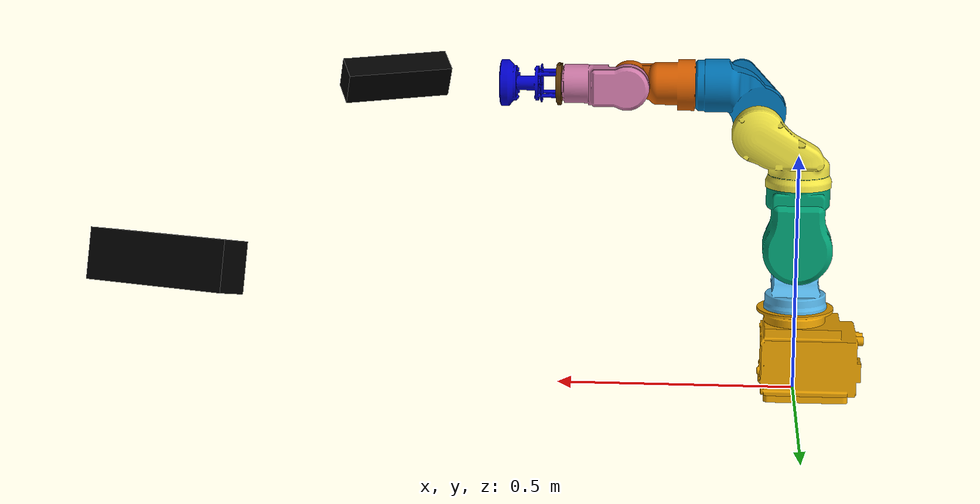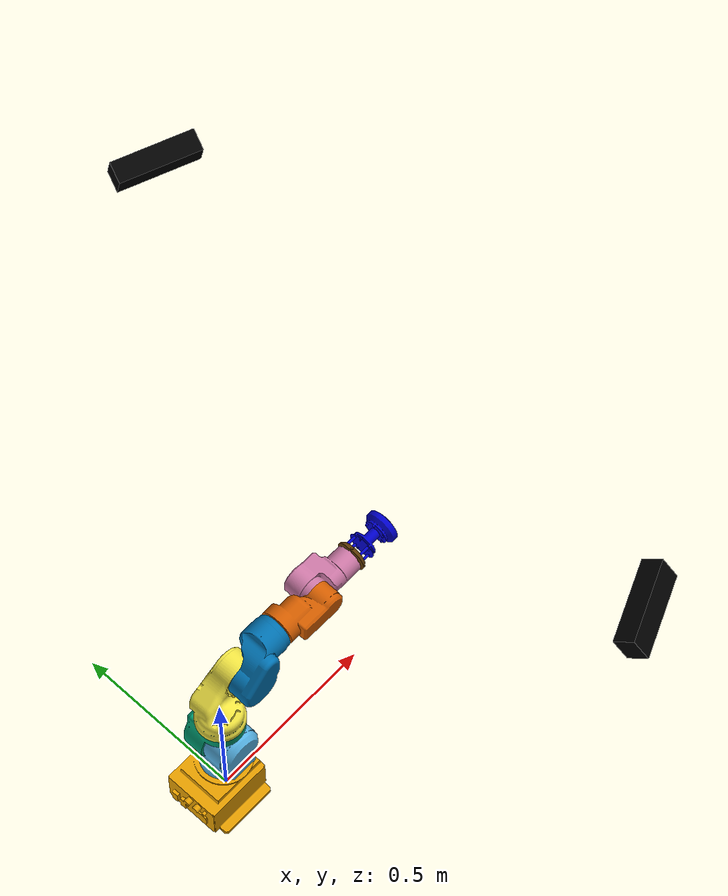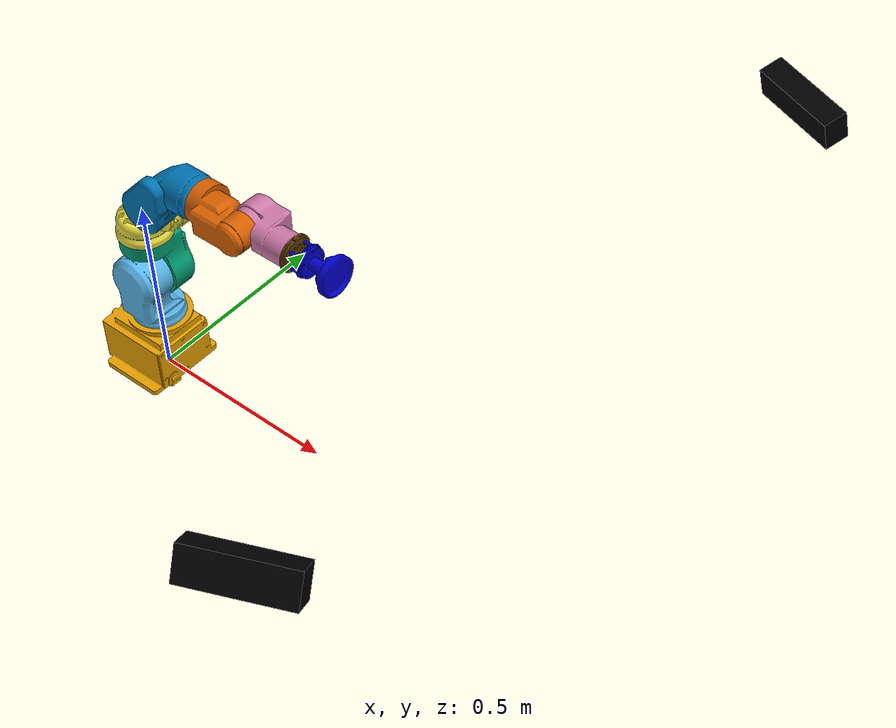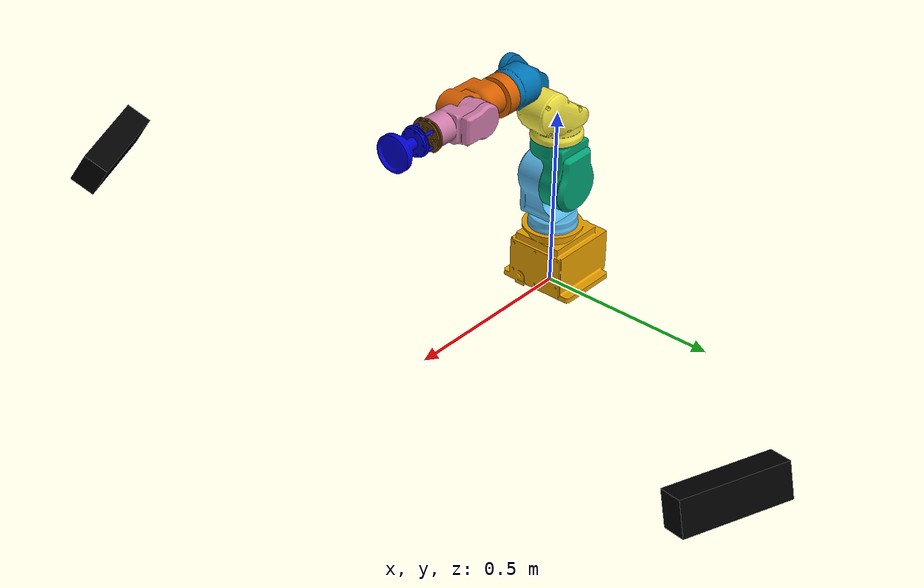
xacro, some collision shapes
<?xml version="1.0"?>
<robot name="sia5" xmlns:xacro="http://ros.org/wiki/xacro">
  <!-- File Include -->
  <xacro:include filename="$(find motoman_description)/urdf/sensor/kinect.urdf.xacro"/>
  <xacro:include filename="$(find motoman_description)/urdf/sensor/kinect.gazebo.xacro"/>
  <xacro:include filename="$(find motoman_description)/robots/sia5/sia5_with_jamming.urdf.xacro"/>

  <!-- add Kinect V2 -->
  <!-- Kinect_first -->
  <!-- Link -->
  <xacro:kinect2_link_box_v0 name="kinect_first_link"/>
  <link name="kinect_first_rgb_optical_frame"/>

  <!-- Joint -->
  <joint name="joint_kinect_first" type="fixed">
    <origin xyz="0.9394 -0.6455 0.5172" rpy="0.0257 0.5551 2.0027" />
    <parent link="base_link"/>
    <child link="kinect_first_link"/>
  </joint>

  <joint name="joint_rgb_kinect_first" type="fixed">
    <origin rpy="${M_PI/2} ${M_PI} ${M_PI/2}"/>
    <parent link="kinect_first_link"/>
    <child link="kinect_first_rgb_optical_frame"/>
  </joint>

  <!-- Gazebo -->
  <xacro:kinect_gazebo name="kinect_first"/>

  <!-- Kinect_second -->
  <!-- Link -->
  <xacro:kinect2_link_box_v0 name="kinect_second_link"/>
  <link name="kinect_second_rgb_optical_frame"/>

  <!-- Joint -->
  <joint name="joint_kinect_second" type="fixed">
    <origin xyz="1.0281 1.2353 0.5207" rpy="-0.0202 0.2594 -1.943" />
    <parent link="base_link"/>
    <child link="kinect_second_link"/>
  </joint>

  <joint name="joint_rgb_kinect_second" type="fixed">
    <origin rpy="${M_PI/2} ${M_PI} ${M_PI/2}"/>
    <parent link="kinect_second_link"/>
    <child link="kinect_second_rgb_optical_frame"/>
  </joint>

  <!-- Gazebo -->
  <xacro:kinect_gazebo name="kinect_second"/>

</robot>

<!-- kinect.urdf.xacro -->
<robot xmlns:xacro="http://ros.org/wiki/xacro">

<xacro:macro name="kinect2_link_box_v0" params="name">
    <link name="${name}">
      <visual>
		<material name="black"/>
        <geometry>
          <mesh filename="package://motoman_description/meshes/sensor/visual/COLLADA/kinectv2.stl"/>
        </geometry>
      </visual>
      <collision>
		<origin xyz="0 0 0.041"/>
        <geometry>
		  <box size="0.065 0.25 0.082"/>
        </geometry>
      </collision>
      <inertial>
        <mass value="0.935"/>
        <inertia ixx="0.0053937" ixy="0" ixz="0"
				 iyy="0.00085311" iyz="0"
				 izz="0.00519899" />
      </inertial>
    </link>
</xacro:macro>
</robot>

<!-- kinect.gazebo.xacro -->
<robot xmlns:xacro="http://ros.org/wiki/xacro">

  <xacro:include filename="$(find motoman_description)/urdf/common.xacro" />

  <xacro:macro name="kinect_gazebo" params="name">
    <gazebo reference="${name}_link">
      <mu1>0.2</mu1>
      <mu2>0.2</mu2>
      <material>Gazebo/Black</material>
      <!-- hd -->
      <sensor type="depth" name="${name}">
        <always_on>true</always_on>
        <update_rate>30.0</update_rate>
        <camera>
          <horizontal_fov>${84.1*M_PI/180.0}</horizontal_fov>
          <image>
            <format>B8G8R8</format>
            <width>512</width>
            <height>424</height>
          </image>
          <clip>
            <near>0.05</near>
            <far>4.5</far>
          </clip>
          <noise>
            <type>gaussian</type>
            <mean>0.0</mean>
            <stddev>0.005</stddev>
          </noise>
        </camera>
        <plugin name="${name}_camera_controller" filename="libgazebo_ros_openni_kinect.so">
          <cameraName>${name}/hd</cameraName>
          <alwaysOn>true</alwaysOn>
          <updateRate>30</updateRate>
          <imageTopicName>image_color</imageTopicName>
          <depthImageTopicName>image_depth</depthImageTopicName>
          <pointCloudTopicName>points</pointCloudTopicName>
          <cameraInfoTopicName>camera_info</cameraInfoTopicName>
          <depthImageCameraInfoTopicName>camera_info</depthImageCameraInfoTopicName>
          <frameName>${name}_rgb_optical_frame</frameName>
          <baseline>0.1</baseline>
          <distortion_k1>0.0</distortion_k1>
          <distortion_k2>0.0</distortion_k2>
          <distortion_k3>0.0</distortion_k3>
          <distortion_t1>0.0</distortion_t1>
          <distortion_t2>0.0</distortion_t2>
          <pointCloudCutoff>0.05</pointCloudCutoff>
          <pointCloudCutoffMax>4.5</pointCloudCutoffMax>
        </plugin>
      </sensor>

      <!-- qhd -->
      <sensor type="depth" name="${name}">
        <always_on>true</always_on>
        <update_rate>30.0</update_rate>
        <camera>
          <horizontal_fov>${84.1*M_PI/180.0}</horizontal_fov>
          <image>
            <format>B8G8R8</format>
            <width>512</width>
            <height>424</height>
          </image>
          <clip>
            <near>0.05</near>
            <far>4.5</far>
          </clip>
          <noise>
            <type>gaussian</type>
            <mean>0.0</mean>
            <stddev>0.005</stddev>
          </noise>
        </camera>
        <plugin name="${name}_camera_controller" filename="libgazebo_ros_openni_kinect.so">
          <cameraName>${name}/qhd</cameraName>
          <alwaysOn>true</alwaysOn>
          <updateRate>30</updateRate>
          <imageTopicName>image_color</imageTopicName>
          <depthImageTopicName>image_depth</depthImageTopicName>
          <pointCloudTopicName>points</pointCloudTopicName>
          <cameraInfoTopicName>camera_info</cameraInfoTopicName>
          <depthImageCameraInfoTopicName>camera_info</depthImageCameraInfoTopicName>
          <frameName>${name}_rgb_optical_frame</frameName>
          <baseline>0.1</baseline>
          <distortion_k1>0.0</distortion_k1>
          <distortion_k2>0.0</distortion_k2>
          <distortion_k3>0.0</distortion_k3>
          <distortion_t1>0.0</distortion_t1>
          <distortion_t2>0.0</distortion_t2>
          <pointCloudCutoff>0.05</pointCloudCutoff>
          <pointCloudCutoffMax>4.5</pointCloudCutoffMax>
        </plugin>
      </sensor>

      <!-- sd -->
      <sensor type="depth" name="${name}">
        <always_on>true</always_on>
        <update_rate>30.0</update_rate>
        <camera>
          <horizontal_fov>${84.1*M_PI/180.0}</horizontal_fov>
          <image>
            <format>B8G8R8</format>
            <width>512</width>
            <height>424</height>
          </image>
          <clip>
            <near>0.05</near>
            <far>4.5</far>
          </clip>
          <noise>
            <type>gaussian</type>
            <mean>0.0</mean>
            <stddev>0.005</stddev>
          </noise>
        </camera>
        <plugin name="${name}_camera_controller" filename="libgazebo_ros_openni_kinect.so">
          <cameraName>${name}/sd</cameraName>
          <alwaysOn>true</alwaysOn>
          <updateRate>30</updateRate>
          <imageTopicName>image_color</imageTopicName>
          <depthImageTopicName>image_depth</depthImageTopicName>
          <pointCloudTopicName>points</pointCloudTopicName>
          <cameraInfoTopicName>camera_info</cameraInfoTopicName>
          <depthImageCameraInfoTopicName>camera_info</depthImageCameraInfoTopicName>
          <frameName>${name}_rgb_optical_frame</frameName>
          <baseline>0.1</baseline>
          <distortion_k1>0.0</distortion_k1>
          <distortion_k2>0.0</distortion_k2>
          <distortion_k3>0.0</distortion_k3>
          <distortion_t1>0.0</distortion_t1>
          <distortion_t2>0.0</distortion_t2>
          <pointCloudCutoff>0.05</pointCloudCutoff>
          <pointCloudCutoffMax>4.5</pointCloudCutoffMax>
        </plugin>
      </sensor>
    </gazebo>
  </xacro:macro>
</robot>

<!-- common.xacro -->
<robot xmlns:xacro="http://ros.org/wiki/xacro">
    <xacro:property name="M_PI" value="3.14159274" />
</robot>

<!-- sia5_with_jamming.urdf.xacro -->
<robot name="sia5" xmlns:xacro="http://ros.org/wiki/xacro">
  <!-- File Include -->
  <xacro:include filename="$(find motoman_description)/urdf/tool/jamming.urdf.xacro"/>
  <xacro:include filename="$(find motoman_description)/urdf/tool/jamming.gazebo.xacro"/>
  <xacro:include filename="$(find motoman_description)/robots/sia5/sia5.urdf.xacro"/>

  <!-- Link -->
  <xacro:tool_link_cylinder_v0 name="gripper_link" mass="1.0"
                               radius="0.0965" height="0.61445"
                               ox="0" oy="0" oz="0"
                               oroll="0" opitch="0" oyaw="0"/>

  <link name="balloon"/>
  <!-- 								   ixx="0.001" ixy="0" ixz="0" -->

  <!-- Joint  -->
  <joint name="joint_gripper" type="fixed">
    <origin rpy="-0.1745 0 0" xyz="0.0001 0 0"/>
    <parent link="tool0"/>
    <child link="gripper_link"/>
  </joint>

  <joint name="joint_balloon" type="fixed">
    <origin rpy="0.1745 0 0" xyz="0.108 0 0"/>
    <parent link="gripper_link"/>
    <child link="balloon"/>
  </joint>

  <!-- Gazebo -->
  <xacro:gazebo_tool_link_v0 name="gripper_link" color="Blue"/>
  <xacro:gazebo_tool_link_v0 name="balloon" color="Red"/>

</robot>

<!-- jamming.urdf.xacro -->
<robot xmlns:xacro="http://ros.org/wiki/xacro">
  <xacro:macro name="tool_link_v0" params="name mass
                                           ixx ixy ixz
                                           iyy iyz izz">
    <link name="${name}">
      <visual>
        <material name="blue"/>
        <geometry>
          <mesh filename="package://motoman_description/meshes/tool/visual/COLLADA/${name}.stl"/>
        </geometry>
      </visual>
      <collision>
        <geometry>
          <mesh filename="package://motoman_description/meshes/tool/collision/STL/${name}.stl"/>
        </geometry>
      </collision>
      <inertial>
        <mass value="${mass}"/>
        <inertia ixx="${ixx}" ixy="${ixy}" ixz="${ixz}" iyy="${iyy}" iyz="${iyz}" izz="${izz}" />
      </inertial>
    </link>
  </xacro:macro>

  <xacro:macro name="tool_link_no_collision_v0" params="name mass
                                                        ixx ixy ixz
                                                        iyy iyz izz">
    <link name="${name}">
      <visual>
		<material name="red"/>
        <geometry>
          <mesh filename="package://motoman_description/meshes/tool/visual/COLLADA/${name}.stl"/>
        </geometry>
      </visual>
      <inertial>
        <mass value="${mass}"/>
        <inertia ixx="${ixx}" ixy="${ixy}" ixz="${ixz}" iyy="${iyy}" iyz="${iyz}" izz="${izz}" />
      </inertial>
    </link>
  </xacro:macro>

  <xacro:macro name="tool_link_cylinder_v0" params="name mass radius height
                                                    ox oy oz oroll opitch oyaw">
    <link name="${name}">
      <visual>
        <material name="blue"/>
        <geometry>
          <mesh filename="package://motoman_description/meshes/tool/visual/COLLADA/${name}.stl"/>
        </geometry>
      </visual>
      <collision>
        <geometry>
          <mesh filename="package://motoman_description/meshes/tool/collision/STL/${name}.stl"/>
        </geometry>
      </collision>
      <inertial>
        <origin xyz="${ox} ${oy} ${oz}" rpy="${oroll} ${opitch} ${oyaw}"/>
        <mass value="${mass}"/>
        <inertia ixx="${mass*((radius*radius)/4+(height*height)/12)}" ixy="0" ixz="0"
                 iyy="${mass*((radius*radius)/4+(height*height)/12)}" iyz="0"
                 izz="${(mass*radius*radius)/2}" />
      </inertial>
    </link>
  </xacro:macro>

</robot>

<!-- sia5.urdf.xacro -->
<robot name="motoman_sia5" xmlns:xacro="http://ros.org/wiki/xacro">
  <!-- File Include -->
  <xacro:include filename="$(find motoman_description)/robots/sia5/sia5_basic.urdf.xacro" />

  <xacro:add_world>
    <origin xyz="0 0 0" rpy="0 0 0"/>
  </xacro:add_world>

</robot>

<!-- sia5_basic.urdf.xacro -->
<robot name="sia5" xmlns:xacro="http://ros.org/wiki/xacro">
  <!-- File Include -->
  <xacro:include filename="$(find motoman_description)/urdf/common.xacro" />
  <xacro:include filename="$(find motoman_description)/urdf/materials.xacro"/>
  <xacro:include filename="$(find motoman_description)/urdf/sia5/body.urdf.xacro" />
  <xacro:include filename="$(find motoman_description)/urdf/sia5/body.transmission.xacro"/>
  <xacro:include filename="$(find motoman_description)/urdf/sia5/body.gazebo.xacro"/>

  <!-- Mass -->
  <xacro:property name="sum_mass" value="30.0" />
  <!-- about mass rate -->
  <xacro:property name="table_mass" value="40.0" />
  <xacro:property name="base_rate" value="8.5" />
  <xacro:property name="s_rate" value="7.7" />
  <xacro:property name="l_rate" value="7.0" />
  <xacro:property name="e_rate" value="1.2" />
  <xacro:property name="u_rate" value="1.0" />
  <xacro:property name="r_rate" value="0.9" />
  <xacro:property name="b_rate" value="0.8" />
  <xacro:property name="t_rate" value="0.5" />
  <!-- Hard ware limits -->
  <!-- Range limits -->
  <xacro:property name="s_axis_upper_limit" value="${179.99999*M_PI/180.0*0.95}"/>
  <xacro:property name="s_axis_lower_limit" value="-${s_axis_upper_limit}"/>
  <xacro:property name="l_axis_upper_limit" value="${110.0*M_PI/180.0*0.95}"/>
  <xacro:property name="l_axis_lower_limit" value="-${l_axis_upper_limit}"/>
  <xacro:property name="e_axis_upper_limit" value="${170.0*M_PI/180.0*0.95}"/>
  <xacro:property name="e_axis_lower_limit" value="-${e_axis_upper_limit}"/>
  <xacro:property name="u_axis_upper_limit" value="${115.0*M_PI/180.0*0.95}"/>
  <xacro:property name="u_axis_lower_limit" value="${-90.0*M_PI/180.0*0.95}"/>
  <xacro:property name="r_axis_upper_limit" value="${179.99999*M_PI/180.0*0.95}"/>
  <xacro:property name="r_axis_lower_limit" value="-${r_axis_upper_limit}"/>
  <xacro:property name="b_axis_upper_limit" value="${110.0*M_PI/180.0*0.95}"/>
  <xacro:property name="b_axis_lower_limit" value="-${b_axis_upper_limit}"/>
  <xacro:property name="t_axis_upper_limit" value="${179.99999*M_PI/180.0*0.95}"/>
  <xacro:property name="t_axis_lower_limit" value="-${t_axis_upper_limit}"/>
  <!-- Velocity limits -->
  <xacro:property name="s_axis_velocity_limit" value="${200.0*M_PI/180.0*0.95}"/>
  <xacro:property name="l_axis_velocity_limit" value="${200.0*M_PI/180.0*0.95}"/>
  <xacro:property name="e_axis_velocity_limit" value="${200.0*M_PI/180.0*0.95}"/>
  <xacro:property name="u_axis_velocity_limit" value="${200.0*M_PI/180.0*0.95}"/>
  <xacro:property name="r_axis_velocity_limit" value="${200.0*M_PI/180.0*0.95}"/>
  <xacro:property name="b_axis_velocity_limit" value="${230.0*M_PI/180.0*0.95}"/>
  <xacro:property name="t_axis_velocity_limit" value="${350.0*M_PI/180.0*0.95}"/>

  <!-- Add macro -->
  <xacro:macro name="add_world" params="*origin">
    <link name="world"/>
    <joint name="world" type="fixed">
      <xacro:insert_block name="origin"/>
      <parent link="world"/>
      <child link="base_link"/>
    </joint>
  </xacro:macro>

  <!-- link -->
  <xacro:link_box_v0 name="base_link" mass="${base_rate/sum_rate*sum_mass}"
                     width="0.1665" depth="0.1976" height="0.1465"
                     ox="-0.025918" oy="-0.000376" oz="0.076105" oroll="0" opitch="0" oyaw="0"/>
  <xacro:link_cylinder_plus_box_v0 name="link_s"
                                   ox="0" oy="0" oz="0" oroll="0" opitch="0" oyaw="0"
                                   mass_cyl="${s_rate/sum_rate*sum_mass*0.2}"
                                   radius_cyl="0.066" height_cyl="0.031"
                                   mass_box="${s_rate/sum_rate*sum_mass*0.8}"
                                   width_box="0.0851" depth_box="0.1" height_box="0.1823"/>
  <xacro:link_cylinder_plus_box_v0 name="link_l"
                                   ox="0" oy="-0.006" oz="0.15" oroll="${M_PI}" opitch="0" oyaw="0"
                                   mass_cyl="${l_rate/sum_rate*sum_mass*0.4}"
                                   radius_cyl="0.066" height_cyl="0.073"
                                   mass_box="${l_rate/sum_rate*sum_mass*0.6}"
                                   width_box="0.073" depth_box="0.1089" height_box="0.149"/>
  <xacro:link_cylinder_plus_box_v0 name="link_e"
                                   ox="0" oy="0" oz="0" oroll="0" opitch="0" oyaw="${-M_PI/2}"
                                   mass_cyl="${e_rate/sum_rate*sum_mass*0.56}"
                                   radius_cyl="0.0685" height_cyl="0.0661"
                                   mass_box="${e_rate/sum_rate*sum_mass*0.44}"
                                   width_box="0.1234" depth_box="0.063" height_box="0.1176"/>
  <xacro:link_cylinder_plus_box_v0 name="link_u"
                                   ox="0.008" oy="-0.06" oz="-0.131" oroll="${-M_PI}" opitch="${M_PI/2}" oyaw="0"
                                   mass_cyl="${u_rate/sum_rate*sum_mass*0.48}"
                                   radius_cyl="0.055" height_cyl="0.0698"
                                   mass_box="${u_rate/sum_rate*sum_mass*0.52}"
                                   width_box="0.13174" depth_box="0.068" height_box="0.104"/>
  <xacro:link_cylinder_plus_box_v0 name="link_r"
                                     ox="0" oy="0" oz="0" oroll="0" opitch="0" oyaw="${-M_PI/2}"
                                     mass_cyl="${r_rate/sum_rate*sum_mass*0.25}"
                                     radius_cyl="0.0525" height_cyl="0.038"
                                     mass_box="${r_rate/sum_rate*sum_mass*0.75}"
                                     width_box="0.0645" depth_box="0.084" height_box="0.1425"/>
  <xacro:link_cylinder_plus_box_v0 name="link_b"
                                     ox="0" oy="0.0045" oz="0.1365" oroll="${M_PI/2}" opitch="${-M_PI/2}" oyaw="0"
                                     mass_cyl="${b_rate/sum_rate*sum_mass*0.55}"
                                     radius_cyl="0.04" height_cyl="0.0948"
                                     mass_box="${b_rate/sum_rate*sum_mass*0.45}"
                                     width_box="0.0676" depth_box="0.076" height_box="0.0627"/>
  <xacro:link_v1 name="link_t" mass="${t_rate/sum_rate*sum_mass}"
                   ixx="0.003" ixy="0" ixz="0"
                   iyy="0.003" iyz="0"
                   izz="0.001"/>
  <link name="tool0"/>

  <!-- joint -->
  <xacro:joint_v1 joint_name="joint_s"
                  parent_name="base_link" child_name="link_s"
                  ox="0" oy="0" oz="0.1765"
                  roll="0" pitch="0" yaw="0"
                  ax="0" ay="0" az="1"
                  el="30.0"
                  ll="${s_axis_lower_limit}" ul="${s_axis_upper_limit}"
                  vl="${s_axis_velocity_limit}"
                  skp="1" skv="1"
                  sll="${s_axis_lower_limit}" sul="${s_axis_upper_limit}"/>
  <xacro:joint_v1 joint_name="joint_l"
                  parent_name="link_s" child_name="link_l"
                  ox="0" oy="0.006" oz="0.136"
                  roll="0" pitch="0" yaw="0"
                  ax="0" ay="1" az="0"
                  el="30.0"
                  ll="${l_axis_lower_limit}" ul="${l_axis_upper_limit}"
                  vl="${l_axis_velocity_limit}"
                  skp="1" skv="1"
                  sll="${l_axis_lower_limit}" sul="${l_axis_upper_limit}"/>
  <xacro:joint_v1 joint_name="joint_e"
                  parent_name="link_l" child_name="link_e"
                  ox="0" oy="-0.006" oz="0.15"
                  roll="0" pitch="0" yaw="0"
                  ax="0" ay="0" az="1"
                  el="30.0"
                  ll="${e_axis_lower_limit}" ul="${e_axis_upper_limit}"
                  vl="${e_axis_velocity_limit}"
                  skp="1" skv="1"
                  sll="${e_axis_lower_limit}" sul="${e_axis_upper_limit}"/>
  <xacro:joint_v1 joint_name="joint_u"
                  parent_name="link_e" child_name="link_u"
                  ox="0.085" oy="-0.00826931" oz="0.12275299"
                  roll="${M_PI/2.0}" pitch="0" yaw="0"
                  ax="0" ay="0" az="1"
                  el="30.0"
                  ll="${u_axis_lower_limit}" ul="${u_axis_upper_limit}"
                  vl="${u_axis_velocity_limit}"
                  skp="1" skv="1"
                  sll="${u_axis_lower_limit}" sul="${u_axis_upper_limit}"/>
  <xacro:joint_v1 joint_name="joint_r"
                  parent_name="link_u" child_name="link_r"
                  ox="0.131" oy="0.06" oz="-0.008"
                  roll="0" pitch="${M_PI/2}" yaw="0"
                  ax="0" ay="0" az="-1"
                  el="14.7"
                  ll="${r_axis_lower_limit}" ul="${r_axis_upper_limit}"
                  vl="${r_axis_velocity_limit}"
                  skp="1" skv="1"
                  sll="${r_axis_lower_limit}" sul="${r_axis_upper_limit}"/>
  <xacro:joint_v1 joint_name="joint_b"
                  parent_name="link_r" child_name="link_b"
                  ox="-0.0045" oy="0" oz="0.139"
                  roll="0" pitch="${-M_PI/2}" yaw="0"
                  ax="0" ay="0" az="1"
                  el="14.7"
                  ll="${b_axis_lower_limit}" ul="${b_axis_upper_limit}"
                  vl="${b_axis_velocity_limit}"
                  skp="1" skv="1"
                  sll="${b_axis_lower_limit}" sul="${b_axis_upper_limit}"/>
  <xacro:joint_v1 joint_name="joint_t"
                  parent_name="link_b" child_name="link_t"
                  ox="0.1365" oy="0" oz="-0.0045"
                  roll="${-M_PI/2}" pitch="0" yaw="0"
                  ax="-1" ay="0" az="0"
                  el="7.35"
                  ll="${t_axis_lower_limit}" ul="${t_axis_upper_limit}"
                  vl="${t_axis_velocity_limit}"
                  skp="1" skv="1"
                  sll="${t_axis_lower_limit}" sul="${t_axis_upper_limit}"/>
  <joint name="joint_tool0" type="fixed">
    <origin rpy="0 0 0" xyz="0.0115 0 0"/>
    <parent link="link_t"/>
    <child link="tool0"/>
  </joint>

  <!-- transmission -->
  <xacro:simple_jp_trans_v0 name="transmission_s"
                            joint_name="joint_s" actuator_name="motor_s"
                            reduction="300"/>
  <xacro:simple_jp_trans_v0 name="transmission_l"
                            joint_name="joint_l" actuator_name="motor_l"
                            reduction="300"/>
  <xacro:simple_jp_trans_v0 name="transmission_e"
                            joint_name="joint_e" actuator_name="motor_e"
                            reduction="100"/>
  <xacro:simple_jp_trans_v0 name="transmission_u"
                            joint_name="joint_u" actuator_name="motor_u"
                            reduction="50"/>
  <xacro:simple_jp_trans_v0 name="transmission_r"
                            joint_name="joint_r" actuator_name="motor_r"
                            reduction="30"/>
  <xacro:simple_jp_trans_v0 name="transmission_b"
                            joint_name="joint_b" actuator_name="motor_b"
                            reduction="30"/>
  <xacro:simple_jp_trans_v0 name="transmission_t"
                            joint_name="joint_t" actuator_name="motor_t"
                            reduction="10"/>

  <!-- gazebo -->
  <gazebo>
    <plugin name="gazebo_ros_control" filename="libgazebo_ros_control.so">
      <robotSimType>gazebo_ros_control/DefaultRobotHWSim</robotSimType>
    </plugin>
  </gazebo>
  <xacro:gazebo_link_v1 name="base_link"/>
  <xacro:gazebo_link_v1 name="link_s"/>
  <xacro:gazebo_link_v1 name="link_l"/>
  <xacro:gazebo_link_v1 name="link_e"/>
  <xacro:gazebo_link_v1 name="link_u"/>
  <xacro:gazebo_link_v1 name="link_r"/>
  <xacro:gazebo_link_v1 name="link_b"/>
  <xacro:gazebo_link_v1 name="link_t"/>
</robot>

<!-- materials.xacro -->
<robot xmlns:xacro="http://ros.org/wiki/xacro">

  <material name="black">
    <color rgba="0.0 0.0 0.0 1.0"/>
  </material>

  <material name="blue">
    <color rgba="0.0 0.0 0.8 1.0"/>
  </material>

  <material name="green">
    <color rgba="0.0 0.8 0.0 1.0"/>
  </material>

  <material name="grey">
    <color rgba="0.2 0.2 0.2 1.0"/>
  </material>

  <material name="orange">
    <color rgba="${255/255} ${108/255} ${10/255} 1.0"/>
  </material>

  <material name="brown">
    <color rgba="${222/255} ${207/255} ${195/255} 1.0"/>
  </material>

  <material name="red">
    <color rgba="0.8 0.0 0.0 1.0"/>
  </material>

  <material name="white">
    <color rgba="1.0 1.0 1.0 1.0"/>
  </material>

</robot>

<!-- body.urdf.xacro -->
<robot xmlns:xacro="http://ros.org/wiki/xacro">
  <xacro:property name="sum_rate" value="${base_rate + s_rate
                                      + l_rate + e_rate
                                      + u_rate + r_rate
                                      + b_rate + t_rate}" />

  <xacro:macro name="link_v1" params="name mass
                                      ixx ixy ixz
                                      iyy iyz izz">
    <link name="${name}">
      <visual>
        <geometry>
          <mesh filename="package://motoman_description/meshes/sia5/visual/COLLADA/${name}.dae"/>
        </geometry>
      </visual>
      <collision>
        <geometry>
          <mesh filename="package://motoman_description/meshes/sia5/collision/STL/${name}.stl"/>
        </geometry>
      </collision>
      <inertial>
        <mass value="${mass}"/>
        <inertia ixx="${ixx}" ixy="${ixy}" ixz="${ixz}" iyy="${iyy}" iyz="${iyz}" izz="${izz}" />
      </inertial>
    </link>
  </xacro:macro>

  <xacro:macro name="link_cylinder_v0" params="name mass radius height
                                               ox oy oz oroll opitch oyaw">
    <link name="${name}">
      <visual>
        <geometry>
          <mesh filename="package://motoman_description/meshes/sia5/visual/COLLADA/${name}.dae"/>
        </geometry>
      </visual>
      <collision>
        <geometry>
          <mesh filename="package://motoman_description/meshes/sia5/collision/STL/${name}.stl"/>
        </geometry>
      </collision>
      <inertial>
		<origin xyz="${ox} ${oy} ${oz}" rpy="${oroll} ${opitch} ${oyaw}"/>
        <mass value="${mass}"/>
        <inertia ixx="${mass*((radius*radius)/4+(height*height)/12)}" ixy="0" ixz="0"
				 iyy="${mass*((radius*radius)/4+(height*height)/12)}" iyz="0"
				 izz="${(mass*radius*radius)/2}" />
      </inertial>
    </link>
  </xacro:macro>

  <xacro:macro name="link_box_v0" params="name mass width depth  height
                                          ox oy oz oroll opitch oyaw">
    <link name="${name}">
      <visual>
        <geometry>
          <mesh filename="package://motoman_description/meshes/sia5/visual/COLLADA/${name}.dae"/>
        </geometry>
      </visual>
      <collision>
        <geometry>
          <mesh filename="package://motoman_description/meshes/sia5/collision/STL/${name}.stl"/>
        </geometry>
      </collision>
      <inertial>
		<origin xyz="${ox} ${oy} ${oz}" rpy="${oroll} ${opitch} ${oyaw}"/>
        <mass value="${mass}"/>
        <inertia ixx="${(mass*((width/2)*(width/2)+(height/2)*(height/2)))/3}" ixy="0" ixz="0"
				 iyy="${(mass*((depth/2)*(depth/2)+(height/2)*(height/2)))/3}" iyz="0"
				 izz="${(mass*((depth/2)*(depth/2)+(width/2)*(width/2)))/3}" />
      </inertial>
    </link>
  </xacro:macro>

  <xacro:macro name="link_box_v1" params="name mass width depth height
                                          ox oy oz oroll opitch oyaw">
    <link name="${name}">
      <visual>
        <geometry>
          <mesh filename="package://motoman_description/meshes/sia5/visual/COLLADA/${name}.dae"/>
        </geometry>
      </visual>
      <collision>
		<origin xyz="0 ${oy} -${oz}" rpy="${oroll} ${opitch} ${oyaw}"/>
        <geometry>
		  <box size="${depth} ${width} ${height}"/>
        </geometry>
      </collision>
      <inertial>
		<origin xyz="${ox} ${oy} ${oz}" rpy="${oroll} ${opitch} ${oyaw}"/>
        <mass value="${mass}"/>
        <inertia ixx="${(mass*((width/2)*(width/2)+(height/2)*(height/2)))/3}" ixy="0" ixz="0"
				 iyy="${(mass*((depth/2)*(depth/2)+(height/2)*(height/2)))/3}" iyz="0"
				 izz="${(mass*((depth/2)*(depth/2)+(width/2)*(width/2)))/3}" />
      </inertial>
    </link>
  </xacro:macro>

  <xacro:macro name="link_cylinder_plus_box_v0" params="name
                                                        ox oy oz oroll opitch oyaw
                                                        mass_cyl radius_cyl height_cyl
                                                        mass_box width_box depth_box height_box">
    <link name="${name}">
      <visual>
        <geometry>
          <mesh filename="package://motoman_description/meshes/sia5/visual/COLLADA/${name}.dae"/>
        </geometry>
      </visual>
      <collision>
        <geometry>
          <mesh filename="package://motoman_description/meshes/sia5/collision/STL/${name}.stl"/>
        </geometry>
      </collision>
      <inertial>
		<origin xyz="${ox} ${oy} ${oz}" rpy="${oroll} ${opitch} ${oyaw}"/>
        <mass value="${mass_cyl+mass_box}"/>
        <inertia ixx="${mass_cyl*((radius_cyl*radius_cyl)/4+(height_cyl*height_cyl)/3)+mass_box/3*(width_box*width_box+height_box*height_box)+mass_box*(radius_cyl*radius_cyl-radius_cyl*width_box+height_cyl*height_cyl+height_cyl*height_box)}" ixy="0" ixz="0"
                 iyy="${mass_cyl*((radius_cyl*radius_cyl)/4+(height_cyl*height_cyl)/12)+mass_box/3*(depth_box*depth_box+height_box*height_box)+mass_box*(radius_cyl*radius_cyl-radius_cyl*depth_box+height_cyl*height_cyl+height_cyl*height_box)}" iyz="0"
                 izz="${(mass_cyl*radius_cyl*radius_cyl)/2+mass_box/3*(depth_box*depth_box+width_box*width_box)+mass_box*(2*radius_cyl*radius_cyl-radius_cyl*depth_box-radius_cyl*width_box)}" />
      </inertial>
    </link>
  </xacro:macro>

  <xacro:macro name="joint_v1" params="joint_name
                                       parent_name child_name
                                       ox oy oz roll pitch yaw ax ay az
                                       el ll ul vl
                                       skp skv sll sul">
    <joint name="${joint_name}" type="revolute">
      <origin xyz="${ox} ${oy} ${oz}" rpy="${roll} ${pitch} ${yaw}"/>
      <parent link="${parent_name}"/>
      <child link="${child_name}"/>
      <axis xyz="${ax} ${ay} ${az}"/>
      <dynamics damping="0.7" friction="0.7"/>
      <limit effort="${el}" lower="${ll}" upper="${ul}" velocity="${vl}"/>
    </joint>
  </xacro:macro>
</robot>
